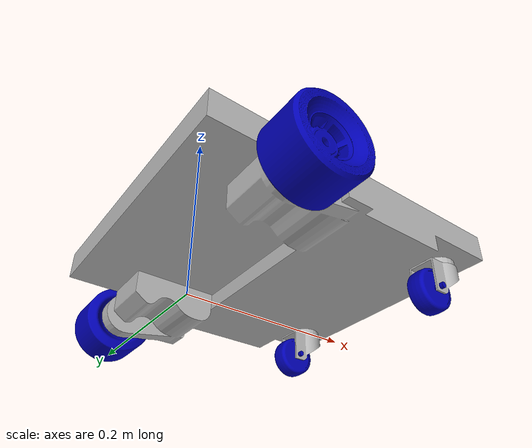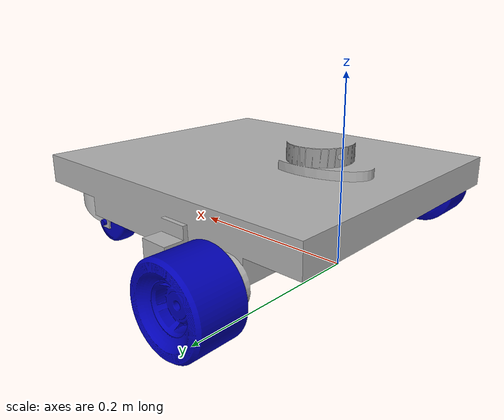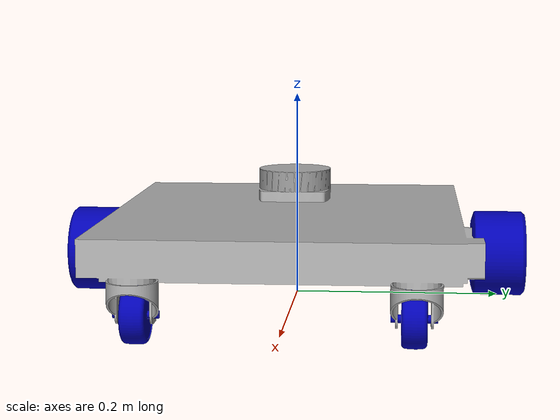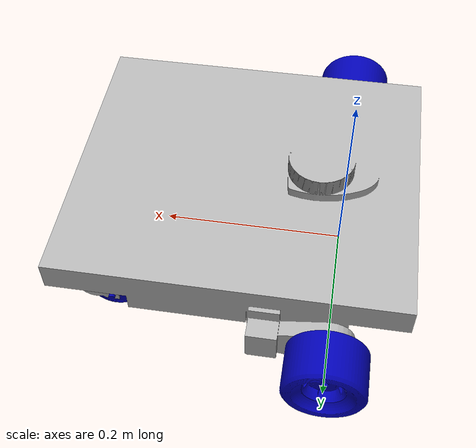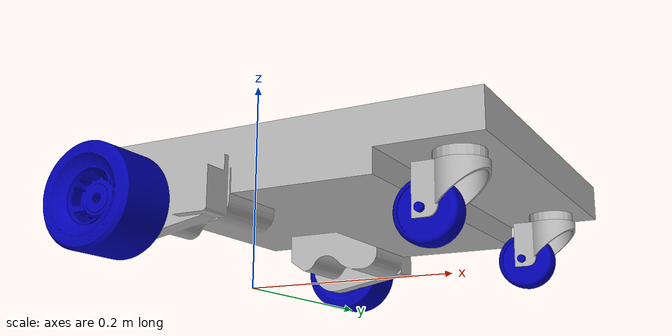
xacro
<?xml version="1.0" ?>
<robot name="scuttle" xmlns:xacro="http://www.ros.org/wiki/xacro">
    <xacro:include filename="$(find scuttle_description)/urdf/materials.xacro" />
    <xacro:include filename="$(find scuttle_description)/urdf/scuttle.trans" />
    <xacro:include filename="$(find scuttle_description)/urdf/scuttle.gazebo" />

    <link name="base_link">
    </link>

    <!--
        A box that pretends to be the ground. Used for testing that the scuttle model has been assembled correctly.
    -->

    <!-- The chassis of scuttle -->
    <joint name="chassis_joint" type="fixed">
        <origin rpy="0 0 0" xyz="0.10539999389648432 0 0.084749938964843793"/>
        <parent link="base_link"/>
        <child link="chassis_link"/>
    </joint>

    <link name="chassis_link">
        <inertial>
            <origin rpy="0 0 0" xyz="0.1 0 0.07392564365565002"/>
            <mass value="3.288323846275119"/>
            <inertia ixx="0.038876" ixy="1.3e-05" ixz="1e-06" iyy="0.047513" iyz="0.000486" izz="0.084083"/>
        </inertial>
        <visual>
            <origin rpy="0 0 0" xyz="0 0 0"/>
            <geometry>
                <!--
                    The visual mesh is a high definition mesh for visual purposes only.

                    Note that the STL mesh is dimensioned in millimeters
                -->
                <mesh filename="package://scuttle_description/meshes/chassis_link.stl" scale="0.001 0.001 0.001"/>
            </geometry>
            <material name="silver"/>
        </visual>
        <collision>
            <origin rpy="0 0 0" xyz="0 0 0"/>
            <geometry>
                <mesh filename="package://scuttle_description/meshes/chassis_link_collision.stl" scale="0.001 0.001 0.001"/>
            </geometry>
        </collision>
    </link>

    <!--
        The left rear wheel. This includes the sprocket for the drive belt.
    -->
    <joint name="l_wheel_joint" type="continuous">
        <origin rpy="0 0 1.570796" xyz="-0.10539999389648432 0.21235 -0.043"/>
        <parent link="chassis_link"/>
        <child link="l_wheel"/>
        <axis xyz="1.0 -0.0 0.0"/>
    </joint>

    <link name="l_wheel">
        <inertial>
            <origin rpy="0 0 0" xyz="-0.020325481156161784 -9.763736334427187e-09 4.516951403188418e-09"/>
            <mass value="0.5928646271111422"/>
            <inertia ixx="0.000334" ixy="0.0" ixz="-0.0" iyy="0.000332" iyz="-0.0" izz="0.000332"/>
        </inertial>
        <visual>
            <origin rpy="0 0 0" xyz="-0.21235 -0.0 -0.04175"/>
            <geometry>
                <mesh filename="package://scuttle_description/meshes/l_wheel_1.stl" scale="0.001 0.001 0.001"/>
            </geometry>
            <material name="blue"/>
        </visual>
        <collision>
            <origin rpy="0 0 0" xyz="-0.21235 -0.0 -0.04175"/>
            <geometry>
                <mesh filename="package://scuttle_description/meshes/l_wheel_collision_1.stl" scale="0.001 0.001 0.001"/>
            </geometry>
        </collision>
    </link>

    <!--
        The right rear wheel. This includes the sprocket for the drive belt.
    -->
    <joint name="r_wheel_joint" type="continuous">
        <origin rpy="0 0 1.570796" xyz="-0.10539999389648432 -0.21235 -0.043"/>
        <parent link="chassis_link"/>
        <child link="r_wheel"/>
        <axis xyz="1.0 0.0 -0.0"/>
    </joint>

    <link name="r_wheel">
        <inertial>
            <origin rpy="0 0 0" xyz="0.020325563043213257 1.3954236146756306e-08 2.0353343177514915e-09"/>
            <mass value="0.592867092340216"/>
            <inertia ixx="0.000334" ixy="0.0" ixz="0.0" iyy="0.000332" iyz="-0.0" izz="0.000332"/>
        </inertial>
        <visual>
            <origin rpy="0 0 0" xyz="0.21215 0.0 -0.04175"/>
            <geometry>
                <mesh filename="package://scuttle_description/meshes/r_wheel_1.stl" scale="0.001 0.001 0.001"/>
            </geometry>
            <material name="blue"/>
        </visual>
        <collision>
            <origin rpy="0 0 0" xyz="0.21215 0.0 -0.04175"/>
            <geometry>
                <mesh filename="package://scuttle_description/meshes/r_wheel_collision_1.stl" scale="0.001 0.001 0.001"/>
            </geometry>
        </collision>
    </link>

    <!--
        The swivel unit for the left caster
    -->
    <joint name="l_caster_swivel_joint" type="continuous">
        <origin rpy="0 0 1.570796" xyz="0.149015 0.119015 -0.025468"/>
        <parent link="chassis_link"/>
        <child link="l_caster_swivel"/>
        <axis xyz="0.0 0.0 1.0"/>
    </joint>

    <link name="l_caster_swivel">
        <inertial>
            <origin rpy="0 0 0" xyz="-0.0002554502352885568 0.010633952722858359 -0.012968467515129908"/>
            <mass value="0.02074189648802402"/>
            <inertia ixx="7e-06" ixy="0.0" ixz="0.0" iyy="8e-06" iyz="1e-06" izz="9e-06"/>
        </inertial>
        <visual>
            <origin rpy="0 0 0" xyz="0.119279 0.254415 -0.059282"/>
            <geometry>
                <mesh filename="package://scuttle_description/meshes/r_caster_swivel_1.stl" scale="0.001 0.001 0.001"/>
            </geometry>
            <material name="silver"/>
        </visual>
        <collision>
            <origin rpy="0 0 0" xyz="0.119279 0.254415 -0.059282"/>
            <geometry>
                <mesh filename="package://scuttle_description/meshes/r_caster_swivel_collision_1.stl" scale="0.001 0.001 0.001"/>
            </geometry>
        </collision>
    </link>

    <!--
        The wheel for the left caster
    -->
    <joint name="l_caster_wheel_joint" type="continuous">
        <origin rpy="0 0 0" xyz="-0.017792 0.024 -0.034"/>
        <parent link="l_caster_swivel"/>
        <child link="l_caster_wheel"/>
        <axis xyz="1.0 0.0 -0.0"/>
    </joint>

    <link name="l_caster_wheel">
        <inertial>
            <origin rpy="0 0 0" xyz="0.0160002016389222 -1.6368916427866864e-07 -7.02880924990934e-08"/>
            <mass value="0.03841110590847018"/>
            <inertia ixx="1.2e-05" ixy="0.0" ixz="-0.0" iyy="7e-06" iyz="0.0" izz="7e-06"/>
        </inertial>
        <visual>
            <origin rpy="0 0 0" xyz="-0.101223 0.230415 -0.025282"/>
            <geometry>
                <mesh filename="package://scuttle_description/meshes/l_caster_wheel_1.stl" scale="0.001 0.001 0.001"/>
            </geometry>
            <material name="blue"/>
        </visual>
        <collision>
            <origin rpy="0 0 0" xyz="-0.101223 0.230415 -0.025282"/>
            <geometry>
                <mesh filename="package://scuttle_description/meshes/l_caster_wheel_collision_1.stl" scale="0.001 0.001 0.001"/>
            </geometry>
        </collision>
    </link>

    <!--
        The swivel unit for the right caster
    -->
    <joint name="r_caster_swivel_joint" type="continuous">
        <origin rpy="0 0 1.570796" xyz="0.149015 -0.119015 -0.025468"/>
        <parent link="chassis_link"/>
        <child link="r_caster_swivel"/>
        <axis xyz="0.0 -0.0 1.0"/>
    </joint>

    <link name="r_caster_swivel">
        <inertial>
            <origin rpy="0 0 0" xyz="-0.00025520971284771765 0.010633952722903461 -0.012968467515129777"/>
            <mass value="0.02074189648802399"/>
            <inertia ixx="7e-06" ixy="0.0" ixz="0.0" iyy="8e-06" iyz="1e-06" izz="9e-06"/>
        </inertial>
        <visual>
            <origin rpy="0 0 0" xyz="-0.119015 0.254415 -0.059282"/>
            <geometry>
                <mesh filename="package://scuttle_description/meshes/l_caster_swivel_1.stl" scale="0.001 0.001 0.001"/>
            </geometry>
            <material name="silver"/>
        </visual>
        <collision>
            <origin rpy="0 0 0" xyz="-0.119015 0.254415 -0.059282"/>
            <geometry>
                <mesh filename="package://scuttle_description/meshes/l_caster_swivel_collision_1.stl" scale="0.001 0.001 0.001"/>
            </geometry>
        </collision>
    </link>

    <!--
        The wheel for the right caster
    -->
    <joint name="r_caster_wheel_joint" type="continuous">
        <origin rpy="0 0 0" xyz="0.014208 0.024 -0.034"/>
        <parent link="r_caster_swivel"/>
        <child link="r_caster_wheel"/>
        <axis xyz="-1.0 -0.0 0.0"/>
    </joint>

    <link name="r_caster_wheel">
        <inertial>
            <origin rpy="0 0 0" xyz="-0.016000038883518655 -1.6368920854881175e-07 -7.028809271419911e-08"/>
            <mass value="0.03841110590847031"/>
            <inertia ixx="1.2e-05" ixy="-0.0" ixz="0.0" iyy="7e-06" iyz="0.0" izz="7e-06"/>
        </inertial>
        <visual>
            <origin rpy="0 0 0" xyz="0.105071 0.230415 -0.025282"/>
            <geometry>
                <mesh filename="package://scuttle_description/meshes/r_caster_wheel_1.stl" scale="0.001 0.001 0.001"/>
            </geometry>
            <material name="blue"/>
        </visual>
        <collision>
            <origin rpy="0 0 0" xyz="0.105071 0.230415 -0.025282"/>
            <geometry>
                <mesh filename="package://scuttle_description/meshes/r_caster_wheel_collision_1.stl" scale="0.001 0.001 0.001"/>
            </geometry>
        </collision>
    </link>

    <!--
        The LIDAR unit. This is attached to the rear extrusion on the chassis.
    -->
    <joint name="lidar" type="fixed">
        <origin rpy="0 0 3.141592" xyz="-0.077900 0.0 0.024850"/>
        <parent link="chassis_link"/>
        <child link="lidar_1"/>
    </joint>

    <link name="lidar_1">
        <inertial>
            <origin rpy="0 0 0" xyz="-0.0010241190327231165 -0.0008953477993804172 0.009594767416774092"/>
            <mass value="0.07327266108520486"/>
            <inertia ixx="2.5e-05" ixy="1e-06" ixz="0.0" iyy="2.5e-05" iyz="0.0" izz="4.4e-05"/>
        </inertial>
        <visual>
            <origin rpy="0 0 0" xyz="-0.0 0.0275 -0.1096"/>
            <geometry>
                <mesh filename="package://scuttle_description/meshes/lidar_1.stl" scale="0.001 0.001 0.001"/>
            </geometry>
            <material name="gray"/>
        </visual>
        <collision>
            <origin rpy="0 0 0" xyz="-0.0 0.0275 -0.1096"/>
            <geometry>
                <mesh filename="package://scuttle_description/meshes/lidar_1.stl" scale="0.001 0.001 0.001"/>
            </geometry>
        </collision>
    </link>
</robot>

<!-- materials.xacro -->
<robot name="scuttle" xmlns:xacro="http://www.ros.org/wiki/xacro" >

<material name="silver">
  <color rgba="0.700 0.700 0.700 1.000"/>
</material>

<material name="blue">
  <color rgba="0.000 0.000 0.700 1.000"/>
</material>

</robot>

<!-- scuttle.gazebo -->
<robot name="scuttle" xmlns:xacro="http://www.ros.org/wiki/xacro" >

<xacro:property name="body_color" value="Gazebo/Silver" />
<xacro:property name="wheel_color" value="Gazebo/Blue" />
<xacro:property name="lidar_color" value="Gazebo/Gray" />

<xacro:arg name="differential_drive_command_topic" default="cmd_vel"/>
<xacro:arg name="differential_drive_odometry_topic" default="odom"/>
<xacro:arg name="differential_drive_odometry_frame" default="odom"/>

<gazebo>
  <plugin filename="libgazebo_ros_control.so" name="control"/>
</gazebo>
<gazebo reference="base_link">
  <material>${body_color}</material>
  <mu1>0.2</mu1>
  <mu2>0.2</mu2>
  <selfCollide>true</selfCollide>
  <gravity>true</gravity>
</gazebo>

<gazebo reference="l_wheel_1">
  <material>${wheel_color}</material>
  <mu1>0.9</mu1>
  <mu2>0.9</mu2>
  <selfCollide>true</selfCollide>
</gazebo>

<gazebo reference="r_wheel_1">
  <material>${wheel_color}</material>
  <mu1>0.9</mu1>
  <mu2>0.9</mu2>
  <selfCollide>true</selfCollide>
</gazebo>

<gazebo reference="lidar_1">
  <material>${lidar_color}</material>
  <mu1>0.2</mu1>
  <mu2>0.2</mu2>
  <selfCollide>true</selfCollide>
</gazebo>

<gazebo reference="r_caster_swivel_1">
  <material>${body_color}</material>
  <mu1>0.2</mu1>
  <mu2>0.2</mu2>
  <selfCollide>true</selfCollide>
</gazebo>

<gazebo reference="l_caster_swivel_1">
  <material>${body_color}</material>
  <mu1>0.2</mu1>
  <mu2>0.2</mu2>
  <selfCollide>true</selfCollide>
</gazebo>

<gazebo reference="l_caster_wheel_1">
  <material>${wheel_color}</material>
  <mu1>0.4</mu1>
  <mu2>0.4</mu2>
  <selfCollide>true</selfCollide>
</gazebo>

<gazebo reference="r_caster_wheel_1">
  <material>${wheel_color}</material>
  <mu1>0.4</mu1>
  <mu2>0.4</mu2>
  <selfCollide>true</selfCollide>
</gazebo>

<gazebo>
  <plugin name="differential_drive_controller" filename="libgazebo_ros_diff_drive.so">

    <!-- Plugin update rate in Hz -->
    <updateRate>50</updateRate>

    <!-- Name of left joint, defaults to `left_joint` -->
    <leftJoint>l_wheel_joint</leftJoint>

    <!-- Name of right joint, defaults to `right_joint` -->
    <rightJoint>r_wheel_joint</rightJoint>

    <!-- The distance from the center of one wheel to the other, in meters, defaults to 0.34 m -->
    <wheelSeparation>0.355</wheelSeparation>

    <!-- Diameter of the wheels, in meters, defaults to 0.15 m -->
    <wheelDiameter>0.0833</wheelDiameter>

    <!-- Wheel acceleration, in rad/s^2, defaults to 0.0 rad/s^2 -->
    <wheelAcceleration>2.7</wheelAcceleration>

    <!-- Maximum torque which the wheels can produce, in Nm, defaults to 5 Nm -->
    <wheelTorque>0.392</wheelTorque>

    <!-- Topic to receive geometry_msgs/Twist message commands, defaults to `cmd_vel` -->
    <commandTopic>$(arg differential_drive_command_topic)</commandTopic>

    <!-- Topic to publish nav_msgs/Odometry messages, defaults to `odom` -->
    <odometryTopic>$(arg differential_drive_odometry_topic)</odometryTopic>

    <!-- Odometry frame, defaults to `odom` -->
    <odometryFrame>$(arg differential_drive_odometry_frame)</odometryFrame>

    <!-- Robot frame to calculate odometry from, defaults to `base_footprint` -->
    <robotBaseFrame>base_link</robotBaseFrame>

    <!-- Odometry source, 0 for ENCODER, 1 for WORLD, defaults to WORLD -->
    <odometrySource>1</odometrySource>

    <!-- Set to true to publish transforms for the wheel links, defaults to false -->
    <publishWheelTF>false</publishWheelTF>

    <!-- Set to true to publish transforms for the odometry, defaults to true -->
    <publishOdom>true</publishOdom>

    <!-- Set to true to publish sensor_msgs/JointState on /joint_states for the wheel joints, defaults to false -->
    <publishWheelJointState>false</publishWheelJointState>

    <!-- Set to true to swap right and left wheels, defaults to true -->
    <legacyMode>false</legacyMode>
  </plugin>
</gazebo>

 <gazebo reference="lidar_1">
    <sensor type="ray" name="rplidar_a1">
      <pose>0 0 0 0 0 0</pose>
      <visualize>false</visualize>
      <update_rate>5.5</update_rate>
      <ray>
        <scan>
          <horizontal>
            <samples>360</samples>
            <resolution>1</resolution>
            <min_angle>0</min_angle>
            <max_angle>6.283185307179586</max_angle>
          </horizontal>
        </scan>
        <range>
          <min>0.15</min>
          <max>12.0</max>
          <resolution>0.005</resolution>
        </range>
        <noise>
          <type>gaussian</type>
          <mean>0.0</mean>
          <stddev>0.01</stddev>
        </noise>
      </ray>
      <plugin name="gazebo_ros_head_hokuyo_controller" filename="libgazebo_ros_laser.so">
        <topicName>/scan</topicName>
        <frameName>lidar_1</frameName>
      </plugin>
    </sensor>
  </gazebo>
</robot>
